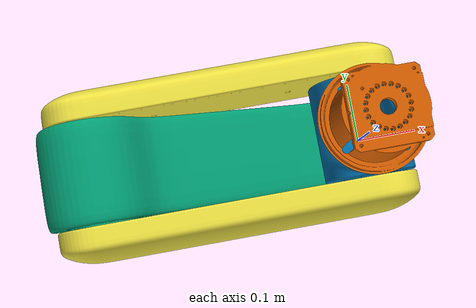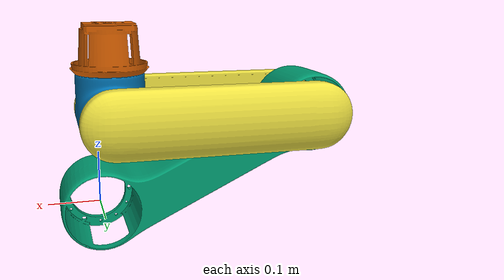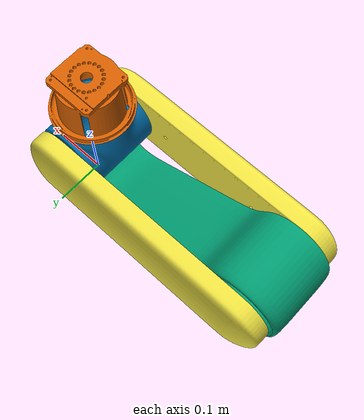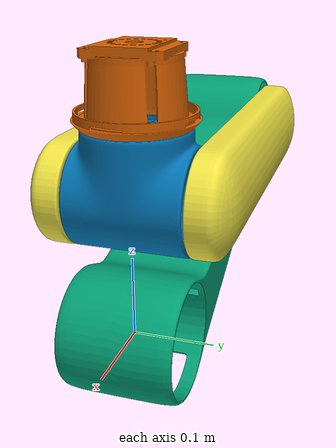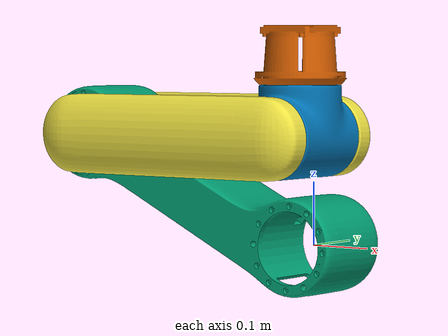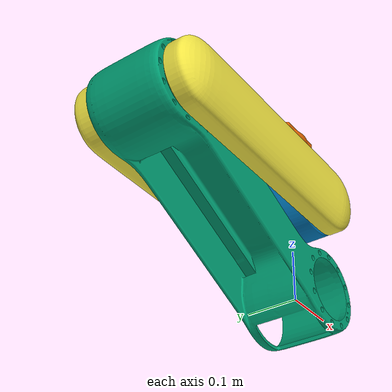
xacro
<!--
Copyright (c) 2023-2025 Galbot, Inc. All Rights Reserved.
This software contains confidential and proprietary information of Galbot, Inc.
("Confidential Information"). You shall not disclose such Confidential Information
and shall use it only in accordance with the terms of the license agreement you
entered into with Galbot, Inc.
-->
<?xml version="1.0"?>

<robot name="leg"
    xmlns:xacro="http://ros.org/wiki/xacro">
    <!-- Include-->
    <xacro:include filename="$(find galbot_one_charlie_description)/xacro/leg/leg.xacro" />
    <!-- Properties -->
    <xacro:property name="M_PI" value="3.1415926535897931" />
    <!-- Parent link -->
    <link name="base_link" />
    <xacro:leg parent="base_link">
        <origin xyz="0 0 0" rpy="0 0 0" />
    </xacro:leg>
</robot>

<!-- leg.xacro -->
<robot xmlns:xacro="http://ros.org/wiki/xacro" name="leg">

  <xacro:macro name="leg" params="parent *origin name:=leg">
    <xacro:property name="M_PI" value="3.1415926535897931"/>

    <joint name="${name}_joint" type="fixed">
      <xacro:insert_block name="origin"/>
      <parent link="${parent}"/>
      <child link="${name}_base_link"/>
    </joint>

    <link name="${name}_base_link">
      <inertial>
        <origin rpy="0 0 0" xyz="0.00138 -0.01502 -0.05360"/>
        <mass value="1.98"/>
        <inertia ixx="0.01545" ixy="0.0" ixz="0.0" iyy="0.01172" iyz="0.0" izz="0.00904"/>

      </inertial>
    </link>

    <link name="${name}_link1">
      <inertial>
        <origin rpy="0 0 0" xyz="0.23126 0.00187 -0.01166"/>
        <mass value="13.38"/>
        <inertia ixx="0.05540" ixy="0.00267" ixz="-0.03511" iyy="1.17040" iyz="-0.00012" izz="1.15967"/>
      </inertial>
      <visual>
        <origin xyz="0 0 0" rpy="0 0 0"/>
        <geometry>
          <mesh filename="package://galbot_one_charlie_description/meshes/leg/leg_link1.obj"/>
        </geometry>

      </visual>
      <collision>
        <origin xyz="0 0 0" rpy="0 0 0"/>
        <geometry>
          <mesh filename="package://galbot_one_charlie_description/meshes/leg/leg_link1.stl"/>
        </geometry>
      </collision>
    </link>

    <joint name="${name}_joint1" type="revolute">
      <origin xyz="0 0 0" rpy="${-M_PI/2} -2.756573021 0"/>
      <parent link="${name}_base_link"/>
      <child link="${name}_link1"/>
      <axis xyz="0 0 1"/>
      <limit lower="0" upper="0.994837674" effort="169" velocity="1"/>
    </joint>

    <link name="${name}_link2">
      <inertial>
        <origin rpy="0 0 0" xyz="0.18340 0.00001 0.01143"/>
        <mass value="4.72"/>
        <inertia ixx="0.04727" ixy="0.00001" ixz="0.01147" iyy="0.29026" iyz="0.00001" izz="0.25782"/>
      </inertial>
      <visual>
        <origin xyz="0 0 0" rpy="0 0 0"/>
        <geometry>
          <mesh filename="package://galbot_one_charlie_description/meshes/leg/leg_link2.obj"/>
        </geometry>

      </visual>
      <collision>
        <origin xyz="0 0 0" rpy="0 0 0"/>
        <geometry>
          <mesh filename="package://galbot_one_charlie_description/meshes/leg/leg_link2.stl"/>
        </geometry>
      </collision>
    </link>

    <joint name="${name}_joint2" type="revolute">
      <origin xyz="0.45 0 0" rpy="-${M_PI} 0 2.756573021"/>
      <parent link="${name}_link1"/>
      <child link="${name}_link2"/>
      <axis xyz="0 0 1"/>
      <limit lower="0" upper="3.05" effort="169" velocity="1"/>
    </joint>

    <link name="${name}_link3">
      <inertial>
        <origin rpy="0 0 0" xyz="0.00004 0.03287 -0.00556"/>
        <mass value="6.04"/>
        <inertia ixx="0.02981" ixy="0.00001" ixz="-0.00000" iyy="0.02294" iyz="-0.00079" izz="0.03182"/>
      </inertial>
      <visual>
        <origin xyz="0 0 0" rpy="0 0 0"/>
        <geometry>
          <mesh filename="package://galbot_one_charlie_description/meshes/leg/leg_link3.obj"/>
        </geometry>

      </visual>
      <collision>
        <origin xyz="0 0 0" rpy="0 0 0" />
        <geometry>
          <mesh filename="package://galbot_one_charlie_description/meshes/leg/leg_link3.stl"/>
        </geometry>
      </collision>
    </link>

    <joint name="${name}_joint3" type="revolute">
      <origin xyz="0.39 0 0" rpy="-${M_PI} 0 -${M_PI}"/>
      <parent link="${name}_link2"/>
      <child link="${name}_link3"/>
      <axis xyz="0 0 1"/>
      <limit lower="0" upper="2.35619449" effort="84" velocity="1"/>
    </joint>

    <link name="${name}_link4">
      <inertial>
        <origin rpy="0 0 0" xyz="0.00006 -0.00003 0.14494"/>
        <mass value="0.55"/>
        <inertia ixx="0.01267" ixy="0.00000" ixz="0.00001" iyy="0.01270" iyz="-0.00000" izz="0.00125"/>
      </inertial>
      <visual>
        <origin xyz="0 0 0" rpy="0 0 0"/>
        <geometry>
          <mesh filename="package://galbot_one_charlie_description/meshes/leg/leg_link4.obj"/>
        </geometry>

      </visual>
      <collision>
        <origin xyz="0 0 0" rpy="0 0 0" />
        <geometry>
          <mesh filename="package://galbot_one_charlie_description/meshes/leg/leg_link4.stl"/>
        </geometry>
      </collision>
    </link>

    <joint name="${name}_joint4" type="revolute">
      <origin xyz="0 0 0" rpy="${M_PI/2} 0 ${-M_PI}"/>
      <parent link="${name}_link3"/>
      <child link="${name}_link4"/>
      <axis xyz="0 0 1"/>
      <limit lower="-1.570796327" upper="1.570796327" effort="30" velocity="1"/>
    </joint>

    <link name="${name}_end_effector_mount_link">
      <inertial>
        <origin xyz="0 0 0" rpy="0 0 0" />
        <mass value="0" />
        <inertia ixx="0" ixy="0" ixz="0" iyy="0" iyz="0" izz="0" />
      </inertial>
    </link>
    <joint name="${name}_end_effector_mount_joint" type="fixed">
      <origin xyz="0 0 0" rpy="0 0 0"/>
      <parent link="${name}_link4"/>
      <child link="${name}_end_effector_mount_link"/>
      <axis xyz="0 0 0"/>
    </joint>

  </xacro:macro>
</robot>
